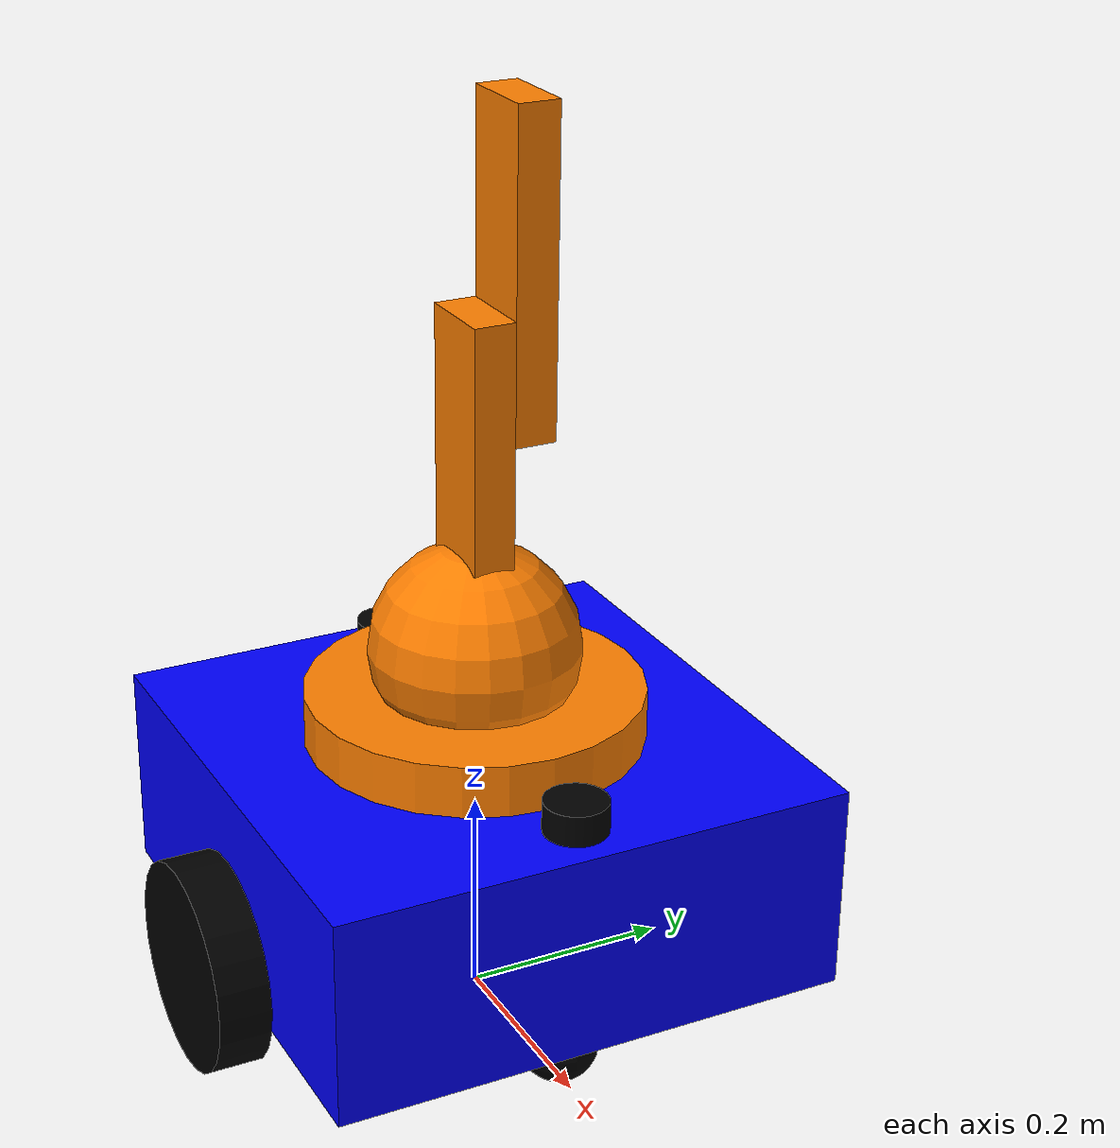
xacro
<?xml version ="1.0"?>

<robot name="agv_mini_manipulator_robot" xmlns:xacro="http://www.ros.org/wiki/xacro">

    <xacro:include filename="common_properties.xacro"/>
    <xacro:include filename="common_hardware.xacro"/>

    <!-- Mobile Base-->
    <xacro:include filename="$(find agv_mini_manipulator_description)/urdf/mobile_base/mobile_base.xacro"/>
    <xacro:include filename="$(find agv_mini_manipulator_description)/urdf/mobile_base/mobile_base_gazebo.xacro"/>
    <!-- Sensors -->
    <xacro:include filename="$(find agv_mini_manipulator_description)/urdf/sensors/lidar.xacro"/>
    <xacro:include filename="$(find agv_mini_manipulator_description)/urdf/sensors/imu.xacro"/>

    <!-- Manipulator -->
    <xacro:include filename="$(find agv_mini_manipulator_description)/urdf/manipulator/arm.xacro"/>
    <xacro:include filename="$(find agv_mini_manipulator_description)/urdf/manipulator/arm_gazebo.xacro"/>

    <!-- Connection -->
    <joint name="base_link_to_arm_base_link" type="fixed">
        <parent link="base_link"/>
        <child link="arm_base_link"/>
        <origin xyz="0 0 ${base_height / 2.0}" rpy="0 0 0"/>
    </joint>

</robot>

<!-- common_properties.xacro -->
<robot xmlns:xacro="http://www.ros.org/wiki/xacro">
    <!-- Materials -->
    <material name="blue">
        <color rgba="0 0 1 1"/>
    </material>

    <material name="black">
        <color rgba="0 0 0 1"/>
    </material>

    <material name="gray">
        <color rgba="0.5 0.5 0.5 1"/>
    </material>

    <material name="orange">
        <color rgba="1 0.5 0 1"/>
    </material>

    <!-- Common Xacros -->
    <xacro:macro name="box_inertia" params="m o_xyz o_rpy length width height">
            <inertial>
                <mass value="${m}"/>
                <origin xyz="${o_xyz}" rpy="${o_rpy}"/>
                <inertia ixx="${m /12 * (width**2 + height**2)}" ixy="0" ixz="0"
                         iyy="${m /12 * (length**2 + height**2)}" iyz="0"
                         izz="${m /12 * (length**2 + width**2)}"/>
            </inertial>
    </xacro:macro>

    <xacro:macro name="box_link" params="link_name m o_xyz o_rpy length width height material_name">
        <link name="${link_name}">
            <visual>
                <geometry>
                <box size="${length} ${width} ${height}"/>
                </geometry>
                <origin xyz="${o_xyz}" rpy="${o_rpy}"/>
                <material name="${material_name}"/>
            </visual>

            <collision>
                <geometry>
                <box size="${length} ${width} ${height}"/>
                </geometry>
                <origin xyz="${o_xyz}" rpy="${o_rpy}"/>
            </collision>

            <xacro:box_inertia m="${m}" o_xyz="${o_xyz}" o_rpy="${o_rpy}"
            length="${length}" width="${width}" height="${height}"/>
        </link>
    </xacro:macro>

    <xacro:macro name="cylinder_inertia" params="m radius length o_xyz o_rpy">
        <inertial>
            <mass value="${m}"/>
            <origin xyz="${o_xyz}" rpy="${o_rpy}"/>
            <inertia ixx="${m / 12 * (3*radius**2 + length**2)}" ixy="0" ixz="0"
                        iyy="${m / 12 * (3*radius**2 + length**2)}" iyz="0"
                        izz="${m / 2 * radius**2}"/>
        </inertial>
    </xacro:macro>

    <xacro:macro name="cylinder" params="link_name m o_xyz o_rpy radius length material_name">
        <link name="${link_name}">
            <visual>
                <geometry>
                    <cylinder radius="${radius}" length="${length}"/>
                </geometry>
                <origin xyz="${o_xyz}" rpy="${o_rpy}"/>
                <material name="${material_name}"/>
            </visual>

            <collision>
                <geometry>
                    <cylinder radius="${radius}" length="${length}"/>
                </geometry>
                <origin xyz="${o_xyz}" rpy="${o_rpy}"/>
            </collision>

            <xacro:cylinder_inertia
            m="${m}" radius="${radius}" length="${length}"
            o_xyz="${o_xyz}" o_rpy="${o_rpy}"/>
        </link>
    </xacro:macro>

    <xacro:macro name="sphere_inertia" params="m radius o_xyz o_rpy">
        <inertial>
            <mass value="${m}"/>
            <origin xyz="${o_xyz}" rpy="${o_rpy}"/>
            <inertia ixx="${2/5 * m * (radius)**2}" ixy="0" ixz="0"
                     iyy="${2/5 * m * (radius)**2}" iyz="0"
                     izz="${2/5 * m * (radius)**2}"/>
        </inertial>
    </xacro:macro>

    <xacro:macro name="sphere" params="link_name m o_xyz o_rpy radius material_name">
        <link name="${link_name}">
            <visual>
                <geometry>
                <sphere radius="${radius}"/>
                </geometry>
                <origin xyz="${o_xyz}" rpy="${o_rpy}"/>
                <material name="${material_name}"/>
            </visual>

            <collision>
                <geometry>
                <sphere radius="${radius}"/>
                </geometry>
                <origin xyz="${o_xyz}" rpy="${o_rpy}"/>
            </collision>

            <xacro:sphere_inertia
            m="${m}" radius="${radius}"
            o_xyz="${o_xyz}" o_rpy="${o_rpy}"/>
        </link>
    </xacro:macro>

    <!-- Joint Xacros -->
    <xacro:macro name="nonzero_inertia">
        <inertial>
            <mass value="0.0001"/>
            <origin xyz="0 0 0" rpy="0 0 0"/>
            <inertia ixx="1e-9" ixy="0" ixz="0"
                     iyy="1e-9" iyz="0"
                     izz="1e-9"/>
        </inertial>
    </xacro:macro>

    <xacro:macro name="three_axis_joint" params="prefix parent_link">
        <link name="${prefix}_link_x">
            <xacro:nonzero_inertia/>
        </link>
        <joint name="${prefix}_joint_x" type="continuous">
            <parent link="${parent_link}"/>
            <child link="${prefix}_link_x"/>
            <origin xyz="0 0 0" rpy="0 0 0"/>
            <axis xyz="1 0 0"/>
        </joint>

        <link name="${prefix}_link_y">
            <xacro:nonzero_inertia/>
        </link>
        <joint name="${prefix}_joint_y" type="continuous">
            <parent link="${prefix}_link_x"/>
            <child link="${prefix}_link_y"/>
            <origin xyz="0 0 0" rpy="0 0 0"/>
            <axis xyz="0 1 0"/>
        </joint>

        <link name="${prefix}_link_z">
            <xacro:nonzero_inertia/>
        </link>
        <joint name="${prefix}_joint_z" type="continuous">
            <parent link="${prefix}_link_y"/>
            <child link="${prefix}_link_z"/>
            <origin xyz="0 0 0" rpy="0 0 0"/>
            <axis xyz="0 0 1"/>
        </joint>
    </xacro:macro>

</robot>

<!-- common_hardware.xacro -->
<robot xmlns:xacro="http://www.ros.org/wiki/xacro">

    <xacro:macro name="wheel" params="prefix m o_xyz o_rpy wheel_radius wheel_thickness">
        <link name="${prefix}_wheel_link">
            <visual>
                <geometry>
                    <cylinder radius="${wheel_radius}" length="${wheel_thickness}"/>
                </geometry>
                <origin xyz="${o_xyz}" rpy="${o_rpy}"/>
                <material name="black"/>
            </visual>

            <collision>
                <geometry>
                <sphere radius="${wheel_radius}"/>
                </geometry>
                <origin xyz="${o_xyz}" rpy="${o_rpy}"/>
            </collision>

            <xacro:cylinder_inertia
            m="${m}" radius="${wheel_radius}" length="${wheel_thickness}"
            o_xyz="${o_xyz}" o_rpy="${o_rpy}"/>
        </link>
    </xacro:macro>

</robot>

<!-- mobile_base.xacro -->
<robot xmlns:xacro="http://www.ros.org/wiki/xacro">

    <!-- Variables -->
    <xacro:property name="base_length" value="0.5"/>
    <xacro:property name="base_width" value="0.5"/>
    <xacro:property name="base_height" value="0.2"/>

    <xacro:property name="wheel_offset" value="0.075"/>
    <xacro:property name="wheel_thickness" value="0.05"/>
    <xacro:property name="wheel_radius" value="0.1"/>

    <!-- base_footprint_base_link_joint -->
    <link name="base_footprint"/>

    <xacro:box_link link_name="base_link" m="5.0" o_xyz="0 0 0" o_rpy="0 0 0"
    length="${base_length}" width="${base_width}" height="${base_height}"
    material_name="blue"/>

    <joint name="base_footprint_base_link_joint" type="fixed">
        <parent link="base_footprint"/>
        <child link="base_link"/>
        <origin xyz="0 0 ${base_height / 2.0 + wheel_offset}" rpy="0 0 0"/>
    </joint>
    <!-- base_footprint_base_link_joint -->

    <!-- base_link_right_wheel_joint -->
    <xacro:wheel prefix="right" m="2.0" o_xyz="0 0 0" o_rpy="0 0 0" wheel_radius="${wheel_radius}" wheel_thickness="${wheel_thickness}"/>
    <joint name="base_link_right_wheel_joint" type="continuous">
        <parent link="base_link"/>
        <child link="right_wheel_link"/>
        <origin xyz="0.0 ${base_width / 2.0 + wheel_thickness / 2.0} ${-1.0 * (base_height / 2.0 - wheel_radius + wheel_offset)}"
        rpy="${pi / 2.0} 0 0"/>
        <axis xyz="0 0 1"/>
        <limit effort = "20.0" velocity="10.0"/>
    </joint>
    <!-- base_link_right_wheel_joint -->

    <!-- base_link_left_wheel_joint -->
    <xacro:wheel prefix="left" m="2.0" o_xyz="0 0 0" o_rpy="0 0 0" wheel_radius="${wheel_radius}" wheel_thickness="${wheel_thickness}"/>
    <joint name="base_link_left_wheel_joint" type="continuous">
        <parent link="base_link"/>
        <child link="left_wheel_link"/>
        <origin xyz="0.0 ${-1.0*(base_width / 2.0 + wheel_thickness / 2.0)} ${-1.0 * (base_height / 2.0 - wheel_radius + wheel_offset)}"
        rpy="${pi / 2.0} 0 0"/>
        <axis xyz="0 0 1"/>
        <limit effort = "20.0" velocity="10.0"/>
    </joint>
    <!-- base_link_left_wheel_joint -->

    <!-- base_link_front_wheel_joint -->
    <xacro:sphere link_name="front_castor_wheel_link" m="0.75" o_xyz="0 0 0" o_rpy="0 0 0"
    radius="${wheel_offset/2.0}" material_name="black"/>
    <joint name="base_link_front_wheel_joint" type="fixed">
        <parent link="base_link"/>
        <child link="front_castor_wheel_link"/>
        <origin xyz="${base_length / 2.0 - 0.075} 0.0 ${-1.0*(base_height / 2.0 + wheel_offset / 2.0)}"
        rpy="0 0 0"/>
    </joint>
    <xacro:three_axis_joint prefix="front_castor_wheel" parent_link="front_castor_wheel_link"/>
    <!-- base_link_front_wheel_joint -->

    <!-- base_link_back_wheel_joint -->
    <xacro:sphere link_name="back_castor_wheel_link" m="0.75" o_xyz="0 0 0" o_rpy="0 0 0"
    radius="${wheel_offset/2.0}" material_name="black"/>

    <joint name="base_link_back_wheel_joint" type="fixed">
        <parent link="base_link"/>
        <child link="back_castor_wheel_link"/>
        <origin xyz="${-1.0*(base_length / 2.0 - 0.075)} 0.0 ${-1.0*(base_height / 2.0 + wheel_offset / 2.0)}"
        rpy="0 0 0"/>
    </joint>
    <xacro:three_axis_joint prefix="back_castor_wheel" parent_link="back_castor_wheel_link"/>
    <!-- base_link_back_wheel_joint -->

</robot>

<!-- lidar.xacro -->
<robot xmlns:xacro="http://www.ros.org/wiki/xacro" >
    <!-- Variables -->
    <xacro:property name="lidar_height" value="0.03"/>
    <xacro:property name="lidar_radius" value="0.03"/>

    <!-- base_link_lidar_front_joint -->
    <xacro:cylinder link_name="front_lidar_link" m="0.5" o_xyz="0 0 0" o_rpy="0 0 0"
    radius="${lidar_radius}" length="${lidar_height}" material_name="black"/>

    <joint name="base_link_lidar_front_joint" type="fixed">
        <parent link="base_link"/>
        <child link="front_lidar_link"/>
        <origin xyz="${base_length / 2.0 - 0.05} 0.0 ${base_height / 2.0 + lidar_height / 2.0}"
        rpy="0 0 0"/>
    </joint>

    <gazebo reference="front_lidar_link">
        <sensor name="front_lidar_link" type="gpu_lidar">
                <topic>scan/front</topic>
                <visualize>true</visualize>
                <update_rate>10</update_rate>
                <gz_frame_id>front_lidar_link</gz_frame_id>

                <lidar>
                    <scan>
                        <horizontal>
                            <samples>20</samples>
                            <resolution>1</resolution>
                            <min_angle>${-5*pi / 8.0}</min_angle>
                            <max_angle>${5*pi / 8.0}</max_angle>
                        </horizontal>
                    </scan>
                    <range>
                        <min>0.05</min>
                        <max>15</max>
                        <resolution>0.01</resolution>
                    </range>
                    <noise>
                        <type>gaussian</type>
                        <mean>0</mean>
                        <stddev>0.01</stddev>
                    </noise>
                </lidar>

            </sensor>
    </gazebo>

    <!-- base_link_lidar_front_joint -->

    <!-- base_link_lidar_back_joint -->
    <xacro:cylinder link_name="back_lidar_link" m="0.5" o_xyz="0 0 0" o_rpy="0 0 0"
    radius="${lidar_radius}" length="${lidar_height}" material_name="black"/>

    <joint name="base_link_lidar_back_joint" type="fixed">
        <parent link="base_link"/>
        <child link="back_lidar_link"/>
        <origin xyz="${-1.0*(base_length / 2.0 - 0.05)} 0.0 ${base_height / 2.0 + lidar_height / 2.0}"
        rpy="0 0 ${pi / 2.0}"/>
    </joint>

    <gazebo reference="back_lidar_link">
        <sensor name="back_lidar_link" type="gpu_lidar">
                <topic>scan/back</topic>
                <visualize>true</visualize>
                <update_rate>10</update_rate>
                <gz_frame_id>back_lidar_link</gz_frame_id>

                <lidar>
                    <scan>
                        <horizontal>
                            <samples>20</samples>
                            <resolution>1</resolution>
                            <min_angle>${-1*pi / 8.0}</min_angle>
                            <max_angle>${9*pi / 8.0}</max_angle>
                        </horizontal>
                    </scan>
                    <range>
                        <min>0.05</min>
                        <max>15</max>
                        <resolution>0.01</resolution>
                    </range>
                    <noise>
                        <type>gaussian</type>
                        <mean>0</mean>
                        <stddev>0.01</stddev>
                    </noise>
                </lidar>

            </sensor>
    </gazebo>

    <!-- base_link_lidar_back_joint -->

</robot>

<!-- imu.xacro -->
<robot xmlns:xacro="http://www.ros.org/wiki/xacro">

   <!-- base_link_imu_joint -->
    <xacro:box_link m="0.5" o_xyz="0 0 0" o_rpy="0 0 0"
    link_name="imu_link" length="0.05"
    width="0.05" height="0.01" material_name="gray"/>

    <joint name="base_link_imu_joint" type="fixed">
        <parent link="base_link"/>
        <child link="imu_link"/>
        <origin xyz="0 0 0" rpy="0 0 0"/>
    </joint>

    <gazebo reference="imu_link">
      <sensor name="imu_sensor" type="imu">
        <always_on>1</always_on>
        <update_rate>50</update_rate>
        <topic>imu/data</topic>
        <gz_frame_id>imu_link</gz_frame_id>

        <imu>
          <enable_orientation>0</enable_orientation>
          <angular_velocity>
            <x>
              <noise type="gaussian">
                <mean>0</mean>
                <stddev>0.009</stddev>
                <bias_mean>0.00075</bias_mean>
                <bias_stddev>0.005</bias_stddev>
                <dynamic_bias_stddev>0.00002</dynamic_bias_stddev>
                <dynamic_bias_correlation_time>400.0</dynamic_bias_correlation_time>
                <precision>0.00025</precision>
              </noise>
            </x>
            <y>
              <noise type="gaussian">
                <mean>0</mean>
                <stddev>0.009</stddev>
                <bias_mean>0.00075</bias_mean>
                <bias_stddev>0.005</bias_stddev>
                <dynamic_bias_stddev>0.00002</dynamic_bias_stddev>
                <dynamic_bias_correlation_time>400.0</dynamic_bias_correlation_time>
                <precision>0.00025</precision>
              </noise>
            </y>
            <z>
              <noise type="gaussian">
                <mean>0</mean>
                <stddev>0.009</stddev>
                <bias_mean>0.00075</bias_mean>
                <bias_stddev>0.005</bias_stddev>
                <dynamic_bias_stddev>0.00002</dynamic_bias_stddev>
                <dynamic_bias_correlation_time>400.0</dynamic_bias_correlation_time>
                <precision>0.00025</precision>
              </noise>
            </z>
          </angular_velocity>
          <linear_acceleration>
            <x>
              <noise type="gaussian">
                <mean>0</mean>
                <stddev>0.021</stddev>
                <bias_mean>0.05</bias_mean>
                <bias_stddev>0.0075</bias_stddev>
                <dynamic_bias_stddev>0.000375</dynamic_bias_stddev>
                <dynamic_bias_correlation_time>175.0</dynamic_bias_correlation_time>
                <precision>0.005</precision>
              </noise>
            </x>
            <y>
              <noise type="gaussian">
                <mean>0</mean>
                <stddev>0.021</stddev>
                <bias_mean>0.05</bias_mean>
                <bias_stddev>0.0075</bias_stddev>
                <dynamic_bias_stddev>0.000375</dynamic_bias_stddev>
                <dynamic_bias_correlation_time>175.0</dynamic_bias_correlation_time>
                <precision>0.005</precision>
              </noise>
            </y>
            <z>
              <noise type="gaussian">
                <mean>0</mean>
                <stddev>0.021</stddev>
                <bias_mean>0.05</bias_mean>
                <bias_stddev>0.0075</bias_stddev>
                <dynamic_bias_stddev>0.000375</dynamic_bias_stddev>
                <dynamic_bias_correlation_time>175.0</dynamic_bias_correlation_time>
                <precision>0.005</precision>
              </noise>
            </z>
          </linear_acceleration>
        </imu>
      </sensor>
    </gazebo>

    <gazebo>
        <plugin
            filename="gz-sim-imu-system"
            name="gz::sim::systems::Imu" >
        </plugin>
    </gazebo>

    <!-- base_link_imu_joint -->

</robot>

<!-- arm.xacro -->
<robot xmlns:xacro="http://www.ros.org/wiki/xacro">

    <!-- Variables -->
    <xacro:property name="manipulator_link_width" value="0.08"/>
    <xacro:property name="manipulator_link_thickness" value="0.04"/>
    <xacro:property name="manipulator_joint_offset" value="0.04"/>

    <xacro:property name="q0_height" value="0.05"/>
    <xacro:property name="q0_limit_lower" value="${-3*pi / 4.0}"/>
    <xacro:property name="q0_limit_upper" value="${3*pi / 4.0}"/>
    <xacro:property name="q0_limit_effort" value="100"/>
    <xacro:property name="q0_limit_velocity" value="100.0"/>
    <xacro:property name="q0_friction" value="0.3"/>
    <xacro:property name="q0_damping" value="0.3"/>

    <xacro:property name="q1_length" value="0.3"/>
    <xacro:property name="q1_limit_lower" value="${-pi / 4.0}"/>
    <xacro:property name="q1_limit_upper" value="${pi / 2.0}"/>
    <xacro:property name="q1_limit_effort" value="100"/>
    <xacro:property name="q1_limit_velocity" value="100.0"/>
    <xacro:property name="q1_friction" value="0.3"/>
    <xacro:property name="q1_damping" value="0.3"/>

    <xacro:property name="q2_length" value="0.264"/>
    <xacro:property name="q2_limit_lower" value="${-3*pi / 4.0}"/>
    <xacro:property name="q2_limit_upper" value="${3*pi / 4.0}"/>
    <xacro:property name="q2_limit_effort" value="100"/>
    <xacro:property name="q2_limit_velocity" value="100.0"/>
    <xacro:property name="q2_friction" value="0.3"/>
    <xacro:property name="q2_damping" value="0.3"/>

    <!-- arm_base_link -->
    <xacro:cylinder link_name="arm_base_link" m="1.0" o_xyz="0 0 ${q0_height / 2.0}"
    o_rpy="0 0 0" radius="0.16" length="${q0_height}" material_name="orange"/>
    <!-- arm_base_link -->

    <xacro:sphere link_name="q0_link" m="0.75" o_xyz="0 0 0" o_rpy="0 0 0"
    radius="0.1" material_name="orange"/>

    <joint name="q0" type="revolute">
        <parent link="arm_base_link"/>
        <child link="q0_link"/>
        <origin xyz="0 0 ${q0_height + manipulator_link_width / 2.0}" rpy="0 0 0"/>
        <axis xyz="0 0 1"/>
        <limit lower="${q0_limit_lower}" upper="${q0_limit_upper}"
        effort="${q0_limit_effort}" velocity="${q0_limit_velocity}"/>
        <dynamics damping="${q0_damping}" friction="${q0_friction}"/>
    </joint>

    <xacro:box_link link_name="q1_link" m="0.5" o_xyz="${q1_length / 2.0} 0 0"
    o_rpy="0 0 0" length="${q1_length + manipulator_joint_offset}" width="${manipulator_link_width}"
    height="${manipulator_link_thickness}" material_name="orange"/>

    <joint name="q1" type="revolute">
        <parent link="q0_link"/>
        <child link="q1_link"/>
        <origin xyz="0 0 0" rpy="${-pi / 2.0} ${-pi / 2.0} 0"/>
        <axis xyz="0 0 1"/>
        <limit lower="${q1_limit_lower}" upper="${q1_limit_upper}"
        effort="${q1_limit_effort}" velocity="${q1_limit_velocity}"/>
        <dynamics damping="${q1_damping}" friction="${q1_friction}"/>
    </joint>

    <xacro:box_link link_name="q2_link" m="0.5" o_xyz="${q2_length / 2.0} 0 0"
    o_rpy="0 0 0" length="${q2_length + manipulator_joint_offset}" width="${manipulator_link_width}"
    height="${manipulator_link_thickness}" material_name="orange"/>

    <joint name="q2" type="revolute">
        <parent link="q1_link"/>
        <child link="q2_link"/>
        <origin xyz="${q2_length - manipulator_joint_offset} 0 ${manipulator_link_thickness}"
        rpy="0 0 0"/>
        <axis xyz="0 0 1"/>
        <limit lower="${q2_limit_lower}" upper="${q2_limit_upper}"
        effort="${q2_limit_effort}" velocity="${q2_limit_velocity}"/>
        <dynamics damping="${q2_damping}" friction="${q2_friction}"/>
    </joint>

</robot>
